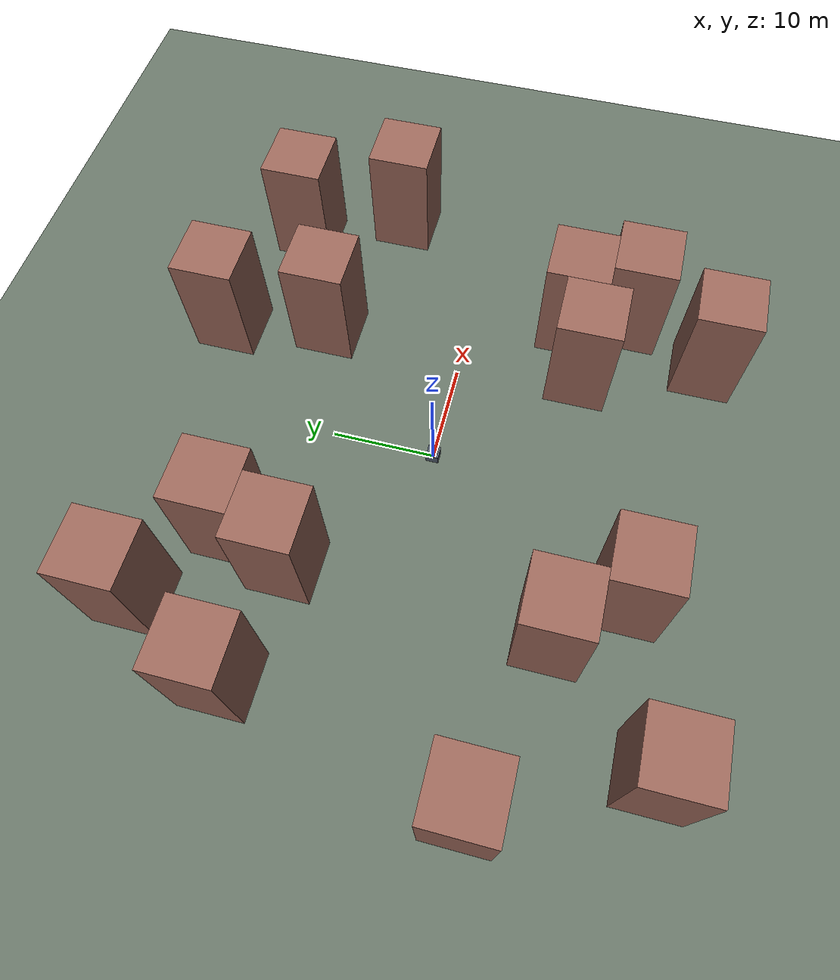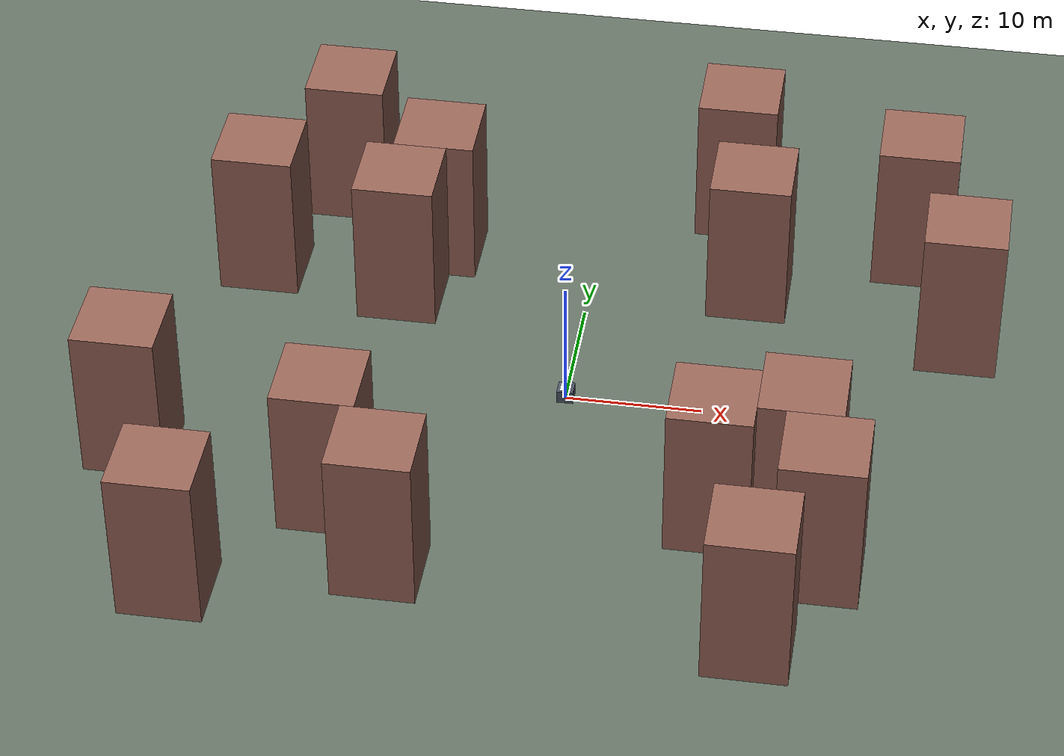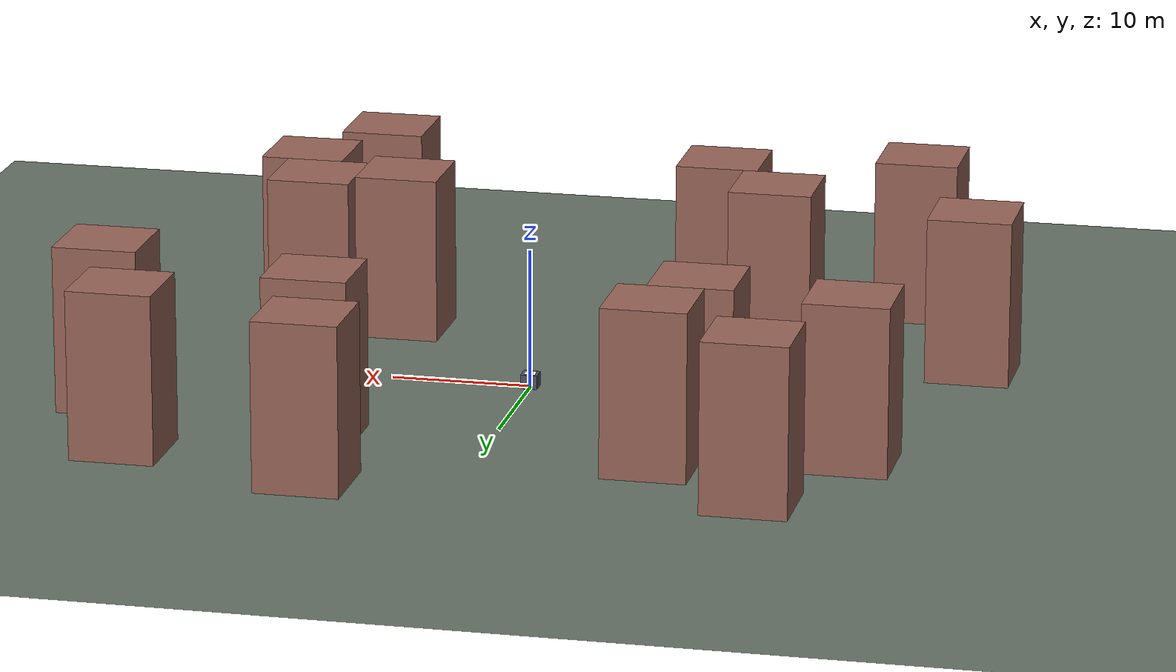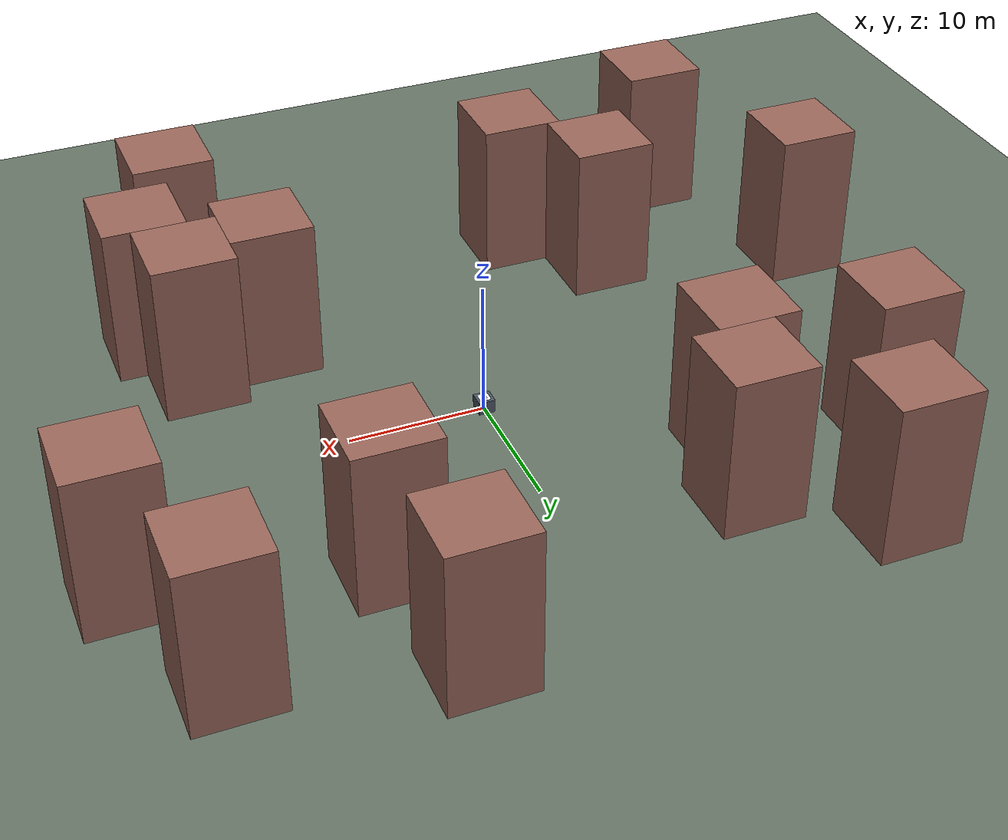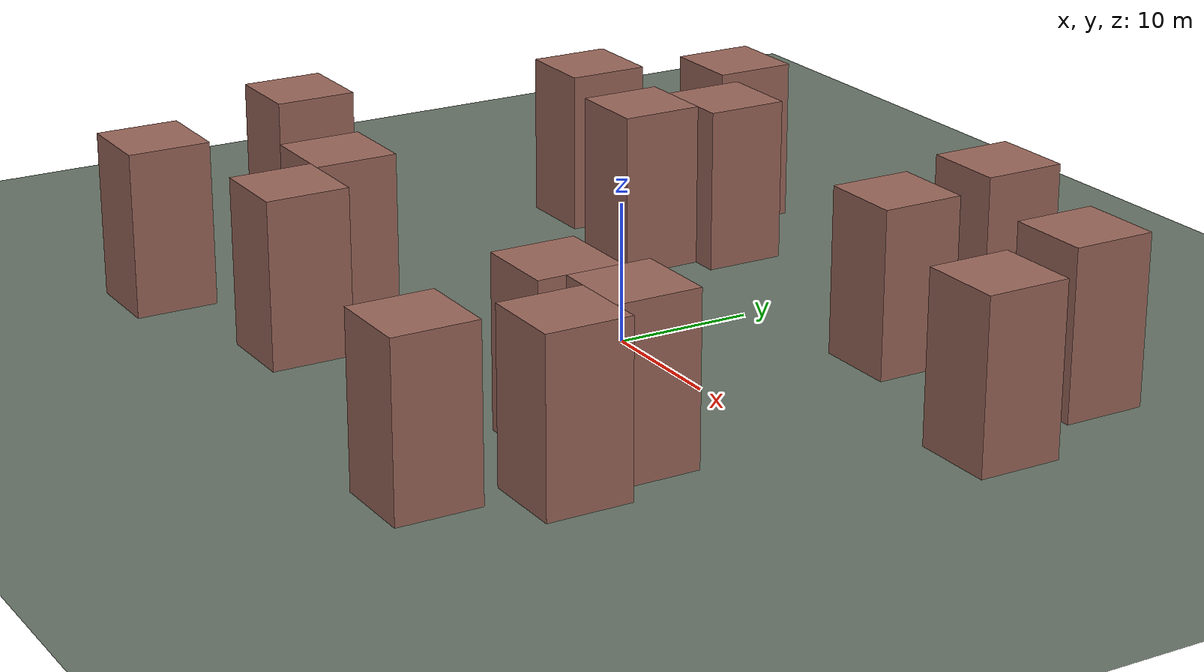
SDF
<sdf version="1.9">
 <world name="obstacle_field">
  <physics name="1ms" type="ignore">
   <max_step_size>0.001</max_step_size>
   <real_time_factor>1.0</real_time_factor>
  </physics>
  <plugin filename="gz-sim-physics-system" name="gz::sim::systems::Physics"/>
  <plugin filename="gz-sim-sensors-system" name="gz::sim::systems::Sensors">
   <render_engine>ogre2</render_engine>
  </plugin>
  <plugin filename="gz-sim-user-commands-system" name="gz::sim::systems::UserCommands"/>
  <plugin filename="gz-sim-scene-broadcaster-system" name="gz::sim::systems::SceneBroadcaster"/>
  <plugin filename="gz-sim-imu-system" name="gz::sim::systems::Imu"/>
  <plugin filename="gz-sim-navsat-system" name="gz::sim::systems::NavSat"/>
  <scene><ambient>0.6 0.6 0.6 1</ambient><background>0.6 0.7 0.85 1</background></scene>
  <spherical_coordinates>
   <latitude_deg>-35.363262</latitude_deg>
   <longitude_deg>149.165237</longitude_deg>
   <elevation>584</elevation>
   <heading_deg>0</heading_deg>
   <surface_model>EARTH_WGS84</surface_model>
  </spherical_coordinates>
  <light type="directional" name="sun">
   <pose>0 0 10 0 0 0</pose>
   <diffuse>0.8 0.8 0.8 1</diffuse>
   <specular>0.8 0.8 0.8 1</specular>
   <attenuation>
    <range>1000</range>
    <constant>0.9</constant>
    <linear>0.01</linear>
    <quadratic>0.001</quadratic>
   </attenuation>
   <direction>-0.5 0.1 -0.9</direction>
  </light>
  <model name="ground_plane">
   <static>true</static>
   <link name="link">
    <collision name="collision">
     <geometry><plane><normal>0 0 1</normal><size>500 500</size></plane></geometry>
    </collision>
    <visual name="visual">
     <geometry><plane><normal>0 0 1</normal><size>500 500</size></plane></geometry>
     <material><ambient>0.35 0.4 0.35 1</ambient><diffuse>0.4 0.45 0.4 1</diffuse></material>
    </visual>
   </link>
  </model>
  <model name="obstacle_1">
   <static>true</static>
   <pose>-25 12 6 0 0 0</pose>
   <link name="link">
    <collision name="collision"><geometry><box><size>6 6 12</size></box></geometry></collision>
    <visual name="visual">
     <geometry><box><size>6 6 12</size></box></geometry>
     <material><ambient>0.55 0.35 0.3 1</ambient><diffuse>0.6 0.4 0.35 1</diffuse></material>
    </visual>
   </link>
  </model>
  <model name="obstacle_2">
   <static>true</static>
   <pose>-15 -14 6 0 0 0</pose>
   <link name="link">
    <collision name="collision"><geometry><box><size>6 6 12</size></box></geometry></collision>
    <visual name="visual">
     <geometry><box><size>6 6 12</size></box></geometry>
     <material><ambient>0.55 0.35 0.3 1</ambient><diffuse>0.6 0.4 0.35 1</diffuse></material>
    </visual>
   </link>
  </model>
  <model name="obstacle_3">
   <static>true</static>
   <pose>-12 16 6 0 0 0</pose>
   <link name="link">
    <collision name="collision"><geometry><box><size>6 6 12</size></box></geometry></collision>
    <visual name="visual">
     <geometry><box><size>6 6 12</size></box></geometry>
     <material><ambient>0.55 0.35 0.3 1</ambient><diffuse>0.6 0.4 0.35 1</diffuse></material>
    </visual>
   </link>
  </model>
  <model name="obstacle_4">
   <static>true</static>
   <pose>12 -12 6 0 0 0</pose>
   <link name="link">
    <collision name="collision"><geometry><box><size>6 6 12</size></box></geometry></collision>
    <visual name="visual">
     <geometry><box><size>6 6 12</size></box></geometry>
     <material><ambient>0.55 0.35 0.3 1</ambient><diffuse>0.6 0.4 0.35 1</diffuse></material>
    </visual>
   </link>
  </model>
  <model name="obstacle_5">
   <static>true</static>
   <pose>12 14 6 0 0 0</pose>
   <link name="link">
    <collision name="collision"><geometry><box><size>6 6 12</size></box></geometry></collision>
    <visual name="visual">
     <geometry><box><size>6 6 12</size></box></geometry>
     <material><ambient>0.55 0.35 0.3 1</ambient><diffuse>0.6 0.4 0.35 1</diffuse></material>
    </visual>
   </link>
  </model>
  <model name="obstacle_6">
   <static>true</static>
   <pose>20 -16 6 0 0 0</pose>
   <link name="link">
    <collision name="collision"><geometry><box><size>6 6 12</size></box></geometry></collision>
    <visual name="visual">
     <geometry><box><size>6 6 12</size></box></geometry>
     <material><ambient>0.55 0.35 0.3 1</ambient><diffuse>0.6 0.4 0.35 1</diffuse></material>
    </visual>
   </link>
  </model>
  <model name="obstacle_7">
   <static>true</static>
   <pose>28 10 6 0 0 0</pose>
   <link name="link">
    <collision name="collision"><geometry><box><size>6 6 12</size></box></geometry></collision>
    <visual name="visual">
     <geometry><box><size>6 6 12</size></box></geometry>
     <material><ambient>0.55 0.35 0.3 1</ambient><diffuse>0.6 0.4 0.35 1</diffuse></material>
    </visual>
   </link>
  </model>
  <model name="obstacle_8">
   <static>true</static>
   <pose>-30 -10 6 0 0 0</pose>
   <link name="link">
    <collision name="collision"><geometry><box><size>6 6 12</size></box></geometry></collision>
    <visual name="visual">
     <geometry><box><size>6 6 12</size></box></geometry>
     <material><ambient>0.55 0.35 0.3 1</ambient><diffuse>0.6 0.4 0.35 1</diffuse></material>
    </visual>
   </link>
  </model>
  <model name="obstacle_9">
   <static>true</static>
   <pose>-20 22 6 0 0 0</pose>
   <link name="link">
    <collision name="collision"><geometry><box><size>6 6 12</size></box></geometry></collision>
    <visual name="visual">
     <geometry><box><size>6 6 12</size></box></geometry>
     <material><ambient>0.55 0.35 0.3 1</ambient><diffuse>0.6 0.4 0.35 1</diffuse></material>
    </visual>
   </link>
  </model>
  <model name="obstacle_10">
   <static>true</static>
   <pose>10 24 6 0 0 0</pose>
   <link name="link">
    <collision name="collision"><geometry><box><size>6 6 12</size></box></geometry></collision>
    <visual name="visual">
     <geometry><box><size>6 6 12</size></box></geometry>
     <material><ambient>0.55 0.35 0.3 1</ambient><diffuse>0.6 0.4 0.35 1</diffuse></material>
    </visual>
   </link>
  </model>
  <model name="obstacle_11">
   <static>true</static>
   <pose>-10 -20 6 0 0 0</pose>
   <link name="link">
    <collision name="collision"><geometry><box><size>6 6 12</size></box></geometry></collision>
    <visual name="visual">
     <geometry><box><size>6 6 12</size></box></geometry>
     <material><ambient>0.55 0.35 0.3 1</ambient><diffuse>0.6 0.4 0.35 1</diffuse></material>
    </visual>
   </link>
  </model>
  <model name="obstacle_12">
   <static>true</static>
   <pose>18 -10 6 0 0 0</pose>
   <link name="link">
    <collision name="collision"><geometry><box><size>6 6 12</size></box></geometry></collision>
    <visual name="visual">
     <geometry><box><size>6 6 12</size></box></geometry>
     <material><ambient>0.55 0.35 0.3 1</ambient><diffuse>0.6 0.4 0.35 1</diffuse></material>
    </visual>
   </link>
  </model>
  <model name="obstacle_13">
   <static>true</static>
   <pose>-24 -24 6 0 0 0</pose>
   <link name="link">
    <collision name="collision"><geometry><box><size>6 6 12</size></box></geometry></collision>
    <visual name="visual">
     <geometry><box><size>6 6 12</size></box></geometry>
     <material><ambient>0.55 0.35 0.3 1</ambient><diffuse>0.6 0.4 0.35 1</diffuse></material>
    </visual>
   </link>
  </model>
  <model name="obstacle_14">
   <static>true</static>
   <pose>24 20 6 0 0 0</pose>
   <link name="link">
    <collision name="collision"><geometry><box><size>6 6 12</size></box></geometry></collision>
    <visual name="visual">
     <geometry><box><size>6 6 12</size></box></geometry>
     <material><ambient>0.55 0.35 0.3 1</ambient><diffuse>0.6 0.4 0.35 1</diffuse></material>
    </visual>
   </link>
  </model>
  <model name="obstacle_15">
   <static>true</static>
   <pose>-14 10 6 0 0 0</pose>
   <link name="link">
    <collision name="collision"><geometry><box><size>6 6 12</size></box></geometry></collision>
    <visual name="visual">
     <geometry><box><size>6 6 12</size></box></geometry>
     <material><ambient>0.55 0.35 0.3 1</ambient><diffuse>0.6 0.4 0.35 1</diffuse></material>
    </visual>
   </link>
  </model>
  <model name="obstacle_16">
   <static>true</static>
   <pose>16 -24 6 0 0 0</pose>
   <link name="link">
    <collision name="collision"><geometry><box><size>6 6 12</size></box></geometry></collision>
    <visual name="visual">
     <geometry><box><size>6 6 12</size></box></geometry>
     <material><ambient>0.55 0.35 0.3 1</ambient><diffuse>0.6 0.4 0.35 1</diffuse></material>
    </visual>
   </link>
  </model>
  <include><uri>model://aruco_platform</uri></include>
 </world>
</sdf>

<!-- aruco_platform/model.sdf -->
<sdf version="1.9">
  <model name="aruco_platform">
    <static>false</static>
    <link name="link">
      <gravity>false</gravity>
      <inertial>
        <mass>100.0</mass>
        <inertia>
          <ixx>20.0</ixx><iyy>20.0</iyy><izz>24.0</izz>
          <ixy>0</ixy><ixz>0</ixz><iyz>0</iyz>
        </inertia>
      </inertial>

      <collision name="body_col">
        <pose>0 0 0.5 0 0 0</pose>
        <geometry><box><size>1.2 1.2 1.0</size></box></geometry>
        <surface>
          <friction>
            <ode><mu>1.0</mu><mu2>1.0</mu2></ode>
          </friction>
        </surface>
      </collision>
      <visual name="body_vis">
        <pose>0 0 0.5 0 0 0</pose>
        <geometry><box><size>1.2 1.2 1.0</size></box></geometry>
        <material>
          <ambient>0.25 0.28 0.32 1</ambient>
          <diffuse>0.30 0.34 0.40 1</diffuse>
          <specular>0.1 0.1 0.1 1</specular>
        </material>
      </visual>

      <visual name="marker_vis_large">
        <pose>0 0 1.001 0 0 0</pose>
        <geometry>
          <plane>
            <normal>0 0 1</normal>
            <size>0.8 0.8</size>
          </plane>
        </geometry>
        <material>
          <ambient>1 1 1 1</ambient>
          <diffuse>1 1 1 1</diffuse>
          <specular>0 0 0 1</specular>
          <pbr>
            <metal>
              <albedo_map>model://aruco_platform/materials/textures/aruco_0.png</albedo_map>
              <metalness>0.0</metalness>
              <roughness>1.0</roughness>
            </metal>
          </pbr>
        </material>
      </visual>
      <visual name="marker_vis_medium">
        <pose>0 0 1.002 0 0 0</pose>
        <geometry>
          <plane>
            <normal>0 0 1</normal>
            <size>0.35 0.35</size>
          </plane>
        </geometry>
        <material>
          <ambient>1 1 1 1</ambient>
          <diffuse>1 1 1 1</diffuse>
          <specular>0 0 0 1</specular>
          <pbr>
            <metal>
              <albedo_map>model://aruco_platform/materials/textures/aruco_1.png</albedo_map>
              <metalness>0.0</metalness>
              <roughness>1.0</roughness>
            </metal>
          </pbr>
        </material>
      </visual>
      <visual name="marker_vis_small">
        <pose>0 0 1.003 0 0 0</pose>
        <geometry>
          <plane>
            <normal>0 0 1</normal>
            <size>0.12 0.12</size>
          </plane>
        </geometry>
        <material>
          <ambient>1 1 1 1</ambient>
          <diffuse>1 1 1 1</diffuse>
          <specular>0 0 0 1</specular>
          <pbr>
            <metal>
              <albedo_map>model://aruco_platform/materials/textures/aruco_2.png</albedo_map>
              <metalness>0.0</metalness>
              <roughness>1.0</roughness>
            </metal>
          </pbr>
        </material>
      </visual>

      <!-- Forward-looking camera for TRACK-LINE following.                -->
      <!-- Mounted at the FRONT-TOP of the box (box front face = x+0.6,    -->
      <!-- top = z+1.0), pitched ~35 deg down so the optical +X axis looks -->
      <!-- forward-and-down at the white guide line a couple metres ahead. -->
      <!-- track_follower_node thresholds the white line in this image and -->
      <!-- steers the platform (cmd_vel) to keep it centred. The camera    -->
      <!-- rides with the box (same link), so it always points along the   -->
      <!-- platform's forward (+x body) direction as it turns. -->
      <visual name="front_cam_vis">
        <pose>0.60 0 0.85 0 0.61 0</pose>
        <geometry><box><size>0.05 0.08 0.05</size></box></geometry>
        <material>
          <ambient>0.05 0.05 0.05 1</ambient>
          <diffuse>0.1 0.1 0.1 1</diffuse>
        </material>
      </visual>
      <sensor name="front_camera" type="camera">
        <gz_frame_id>aruco_platform/front_camera</gz_frame_id>
        <pose>0.60 0 0.85 0 0.61 0</pose>
        <always_on>1</always_on>
        <update_rate>30</update_rate>
        <visualize>true</visualize>
        <topic>front_camera/image</topic>
        <camera>
          <!-- Wide FOV (~92 deg) so BOTH lane lines (2 m apart) stay in frame
               even at the near rows where the lane spans widest in the image. -->
          <horizontal_fov>1.60</horizontal_fov>
          <image>
            <width>640</width>
            <height>480</height>
            <format>R8G8B8</format>
          </image>
          <clip>
            <near>0.05</near>
            <far>1000</far>
          </clip>
          <optical_frame_id>aruco_platform/front_camera_optical</optical_frame_id>
        </camera>
      </sensor>
    </link>

    <plugin filename="gz-sim-detachable-joint-system"
            name="gz::sim::systems::DetachableJoint">
      <parent_link>link</parent_link>
      <child_model>iris_with_standoffs</child_model>
      <child_link>base_link</child_link>
      <topic>/aruco_platform/detach</topic>
      <suppress_initial_detach>true</suppress_initial_detach>
    </plugin>

    <plugin filename="gz-sim-velocity-control-system"
            name="gz::sim::systems::VelocityControl">
      <topic>/model/aruco_platform/cmd_vel</topic>
    </plugin>
  </model>
</sdf>
